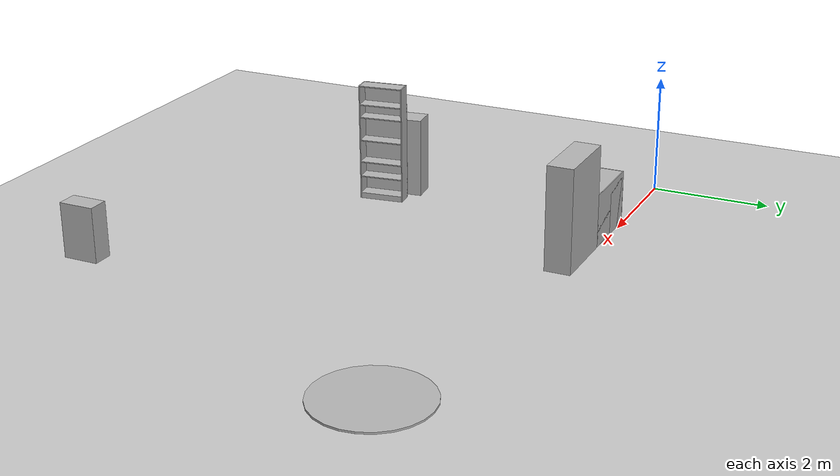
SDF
<sdf version="1.6">
 <world name="rwc2017">
  <light name="sun" type="directional">
   <direction>0.5 0.1 -0.9</direction>
   <pose>0 0 10 0 0 0</pose>
   <specular>0.2 0.2 0.2 1</specular>
   <diffuse>0.8 0.8 0.8 1</diffuse>
   <attenuation>
    <range>1000</range>
    <quadratic>0.001</quadratic>
    <constant>0.9</constant>
    <linear>0.01</linear>
   </attenuation>
  </light>
  <model name="initial_pose" type="waypoint">
   <pose>9.3 -7.3 0 0 0 2.35619449019</pose>
   <static>true</static>
  </model>
  <model name="exit" type="waypoint"><pose>0.0 1.0 0 0 0 1.57079632679</pose><static>true</static></model>
  <model name="initial_pose_exit" type="waypoint">
   <pose>0.0 1.0 0.0 0 0 -1.570796</pose>
   <static>true</static>
  </model>
  <model name="registration_table1" type="waypoint">
   <pose>4.16 -5.61 0 0 0 3.1415</pose>
   <static>true</static>
  </model>
  <model name="registration_table2" type="waypoint">
   <pose>6.12 -5.79 0 0 0 3.1415</pose>
   <static>true</static>
  </model>
  <model name="registration_table3" type="waypoint">
   <pose>2.55 -5.65 0 0 0 3.1415</pose>
   <static>true</static>
  </model>
  <model name="exit_1_rips" type="waypoint"><pose>0.0 1.0 0 0 0 1.5708</pose><static>true</static></model>
  <model name="exit_2_rips" type="waypoint"><pose>0.0 2.0 0 0 0 1.5708</pose><static>true</static></model>
  <model name="exit_3_rips" type="waypoint"><pose>0.0 -1.0 0 0 0 1.5708</pose><static>true</static></model>
  <model name="exit_4_rips" type="waypoint"><pose>0.0 -2.0 0 0 0 1.5708</pose><static>true</static></model>
  <model name="help_me_carry_start" type="waypoint"><pose>3.5 -5.6 0 0 0 0</pose><static>true</static></model>
  <model name="gpsr_meeting_point" type="waypoint"><pose>-2.0 -1.4 0 0 0 0.0</pose><static>true</static></model>
  <model name="gpsr_exit_door" type="waypoint">
   <pose>0.0 1.0 0 0 0 1.57079632679</pose>
   <static>true</static>
  </model>
  <model name="ssl_demo_waypoint" type="waypoint">
   <pose>0.0 -3.0 0 0 0 -1.5708</pose>
   <static>true</static>
  </model>
  <model name="laser_demo_waypoint" type="waypoint">
   <pose>2.0 -5.6 0 0 0 3.1415</pose>
   <static>true</static>
  </model>
  <model name="order_counter_waypoint" type="waypoint">
   <pose>0.0 -6.0 0 0 0 -1.5708</pose>
   <static>true</static>
  </model>
  <model name="hsr_demo_waypoint" type="waypoint">
   <pose>4.278 -4.2286 0 0 0 -0.6158</pose>
   <static>true</static>
  </model>
  <model name="entrance" type="room">
   <link name="in">
    <virtual_volume name="in_vv">
     <geometry><box><size>2.8 1.5 0.01</size></box></geometry>
     <pose>0.15 -0.15 0.005 0 0 0</pose>
    </virtual_volume>
   </link>
   <pose>7.8 -7.1 0 0 0 0</pose>
   <static>true</static>
  </model>
  <model name="living_room" type="room">
   <link name="in">
    <virtual_volume name="in_vv">
     <geometry><box><size>4.0 4.65 0.01</size></box></geometry>
     <pose>-0.2 0.225 0.005 0 0 0</pose>
    </virtual_volume>
   </link>
   <pose>0.0 -2.8 0 0 0 0</pose>
   <static>true</static>
  </model>
  <model name="exit_area" type="room">
   <link name="in">
    <virtual_volume name="in_vv">
     <geometry><box><size>1.4 0.8 0.01</size></box></geometry>
     <pose>0.0 0.0 0.005 0 0 0</pose>
    </virtual_volume>
   </link>
   <pose>0.0 -0.4 0 0 0 0</pose>
   <static>true</static>
  </model>
  <model name="corridor" type="room">
   <link name="in">
    <virtual_volume name="in_vv">
     <geometry><box><size>7.3 0.85 0.01</size></box></geometry>
     <pose>-0.45 0.025 0.005 0 0 0</pose>
    </virtual_volume>
   </link>
   <pose>6.5 -5.7 0 0 0 0</pose>
   <static>true</static>
  </model>
  <model name="bedroom" type="room">
   <link name="in">
    <virtual_volume name="in_vv">
     <geometry><box><size>3.05 4.8 0.01</size></box></geometry>
     <pose>0.725 0.05 0.005 0 0 0</pose>
    </virtual_volume>
   </link>
   <pose>7.5 -2.5 0 0 0 0</pose>
   <static>true</static>
  </model>
  <model name="kitchen" type="room">
   <link name="in">
    <virtual_volume name="in_vv">
     <geometry><box><size>3.7 4.55 0.01</size></box></geometry>
     <pose>0.25 -0.825 0.005 0 0 0</pose>
    </virtual_volume>
   </link>
   <pose>4.0 -1.5 0 0 0 0</pose>
   <static>true</static>
  </model>
  <model name="balcony" type="room">
   <link name="in">
    <virtual_volume name="in_vv">
     <geometry><box><size>3.45 3.5 0.01</size></box></geometry>
     <pose>0.275 -0.85 0.005 0 0 0</pose>
    </virtual_volume>
   </link>
   <pose>-1.0 -7.2 0 0 0 0</pose>
   <static>true</static>
  </model>
  <include><name>floor</name><uri>model://ground_plane</uri></include>
  <include>
   <pose>6.655 -7.21 0.0 0 0 0.0</pose>
   <name>entrance_shelf</name>
   <uri>model://rwc2017/cabinet_black</uri>
  </include>
  <include>
   <pose>1.92 -4.1 0.0 0 0 3.27079632679</pose>
   <name>bookcase</name>
   <uri>model://rwc2017/cabinet_showcase</uri>
  </include>
  <include>
   <pose>2.31 -0.255 0.0 0 0 -1.57079632679</pose>
   <name>sideboard</name>
   <uri>model://rwc2017/cabinet_brown_low</uri>
  </include>
  <include>
   <pose>3.51 -0.255 0.0 0 0 -1.57079632679</pose>
   <name>sideboard_high</name>
   <uri>model://rwc2017/cabinet_brown_high</uri>
  </include>
  <include>
   <pose>2.39 -4.125 0.0 0 0 0.1292036732</pose>
   <name>kitchen_shelf</name>
   <uri>model://rwc2017/cabinet_kitchen</uri>
  </include>
  <include><pose>8.85 -1.0 0.0 0 0 0.0</pose><name>carpet</name><uri>model://rwc2017/carpet</uri></include>
  <physics type="ode">
   <real_time_update_rate>333.0</real_time_update_rate>
   <max_step_size>0.003</max_step_size>
   <ode><constraints><cfm>0.0001</cfm></constraints><solver><type>quick</type><iters>100</iters></solver></ode>
  </physics>
 </world>
</sdf>

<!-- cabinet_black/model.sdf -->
<sdf version="1.6">
  <model name="rwc2017/cabinet_black">
    <link name="1_link">
      <collision name="1_col">
        <geometry>
          <box>
            <size>0.35 0.6 0.93</size>
          </box>
        </geometry>
      </collision>
      <visual name="1_vis">
        <geometry>
          <box>
            <size>0.35 0.6 0.93</size>
          </box>
        </geometry>
      </visual>
      <pose>0 0 0.465 0 0 0</pose>
    </link>
    <link name="on_top_of">
      <virtual_volume name="on_top_of_vv">
        <geometry>
          <box>
            <size>0.29 0.54 0.25</size>
          </box>
        </geometry>
        <pose>0.0 0.0 1.075 0 0 0</pose>
      </virtual_volume>
    </link>
    <link name="in_front_of">
      <virtual_volume name="in_front_of_vv">
        <geometry>
          <box>
            <size>0.2 0.4 0.01</size>
          </box>
        </geometry>
        <pose>0.6 0.0 0.005 0 0 0</pose>
      </virtual_volume>
    </link>
    <static>true</static>
  </model>
</sdf>

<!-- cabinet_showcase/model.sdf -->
<sdf version="1.6">
  <model name="rwc2017/cabinet_showcase">
    <link name="1_link">
      <collision name="1_col">
        <geometry>
          <box>
            <size>0.41 1.0 1.36</size>
          </box>
        </geometry>
      </collision>
      <visual name="1_vis">
        <geometry>
          <box>
            <size>0.41 1.0 1.36</size>
          </box>
        </geometry>
      </visual>
      <pose>0 0 0.68 0 0 0</pose>
    </link>
    <link name="on_top_of">
      <virtual_volume name="on_top_of_vv">
        <geometry>
          <box>
            <size>0.35 0.94 0.25</size>
          </box>
        </geometry>
        <pose>0.0 0.0 1.505 0 0 0</pose>
      </virtual_volume>
    </link>
    <link name="in_front_of">
      <virtual_volume name="in_front_of_vv">
        <geometry>
          <box>
            <size>0.2 0.8 0.01</size>
          </box>
        </geometry>
        <pose>0.705 0.0 0.005 0 0 0</pose>
      </virtual_volume>
    </link>
    <static>true</static>
  </model>
</sdf>

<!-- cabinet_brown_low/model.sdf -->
<sdf version="1.6">
  <model name="rwc2017/cabinet_brown_low">
    <link name="1_link">
      <collision name="1_col">
        <geometry>
          <box>
            <size>0.44 0.015 0.9</size>
          </box>
        </geometry>
      </collision>
      <visual name="1_vis">
        <geometry>
          <box>
            <size>0.44 0.015 0.9</size>
          </box>
        </geometry>
      </visual>
      <pose>0 -0.5925 0.45 0 0 0</pose>
    </link>
    <link name="2_link">
      <collision name="2_col">
        <geometry>
          <box>
            <size>0.44 0.015 0.9</size>
          </box>
        </geometry>
      </collision>
      <visual name="2_vis">
        <geometry>
          <box>
            <size>0.44 0.015 0.9</size>
          </box>
        </geometry>
      </visual>
      <pose>0 0.5925 0.45 0 0 0</pose>
    </link>
    <link name="3_link">
      <collision name="3_col">
        <geometry>
          <box>
            <size>0.015 1.2 0.9</size>
          </box>
        </geometry>
      </collision>
      <visual name="3_vis">
        <geometry>
          <box>
            <size>0.015 1.2 0.9</size>
          </box>
        </geometry>
      </visual>
      <pose>-0.2125 0 0.45 0 0 0</pose>
    </link>
    <link name="4_link">
      <collision name="4_col">
        <geometry>
          <box>
            <size>0.425 1.17 0.03</size>
          </box>
        </geometry>
      </collision>
      <visual name="4_vis">
        <geometry>
          <box>
            <size>0.425 1.17 0.03</size>
          </box>
        </geometry>
      </visual>
      <pose>0.0075 0 0.885 0 0 0</pose>
    </link>
    <link name="5_link">
      <collision name="5_col">
        <geometry>
          <box>
            <size>0.425 1.17 0.03</size>
          </box>
        </geometry>
      </collision>
      <visual name="5_vis">
        <geometry>
          <box>
            <size>0.425 1.17 0.03</size>
          </box>
        </geometry>
      </visual>
      <pose>0.0075 0 0.015 0 0 0</pose>
    </link>
    <link name="6_link">
      <collision name="6_col">
        <geometry>
          <box>
            <size>0.425 1.17 0.045</size>
          </box>
        </geometry>
      </collision>
      <visual name="6_vis">
        <geometry>
          <box>
            <size>0.425 1.17 0.045</size>
          </box>
        </geometry>
      </visual>
      <pose>0.0075 0 0.4625 0 0 0</pose>
    </link>
    <link name="7_link">
      <collision name="7_col">
        <geometry>
          <box>
            <size>0.425 0.045 0.855</size>
          </box>
        </geometry>
      </collision>
      <visual name="7_vis">
        <geometry>
          <box>
            <size>0.425 0.045 0.855</size>
          </box>
        </geometry>
      </visual>
      <pose>0.0075 0.0 0.4575 0 0 0</pose>
    </link>
    <link name="8_link">
      <collision name="8_col">
        <geometry>
          <box>
            <size>0.44 0.6 0.89</size>
          </box>
        </geometry>
      </collision>
      <visual name="8_vis">
        <geometry>
          <box>
            <size>0.44 0.6 0.89</size>
          </box>
        </geometry>
      </visual>
      <pose>0.0 -0.3 0.44 0 0 0</pose>
    </link>
    <link name="9_link">
      <collision name="9_col">
        <geometry>
          <box>
            <size>0.44 0.6 0.43</size>
          </box>
        </geometry>
      </collision>
      <visual name="9_vis">
        <geometry>
          <box>
            <size>0.44 0.6 0.43</size>
          </box>
        </geometry>
      </visual>
      <pose>0.0 0.3 0.22 0 0 0</pose>
    </link>
    <link name="in_front_of">
      <virtual_volume name="in_front_of_vv">
        <geometry>
          <box>
            <size>0.2 0.7 0.01</size>
          </box>
        </geometry>
        <pose>0.72 0.15 0.005 0 0 0</pose>
      </virtual_volume>
    </link>
    <link name="on_top_of">
      <virtual_volume name="on_top_of_vv">
        <geometry>
          <box>
            <size>0.415 1.14 0.325</size>
          </box>
        </geometry>
        <pose>0.0075 0.0 1.0875 0 0 0</pose>
      </virtual_volume>
    </link>
    <link name="shelf1">
      <virtual_volume name="shelf1_vv">
        <geometry>
          <box>
            <size>0.395 0.51 0.29</size>
          </box>
        </geometry>
        <pose>0.0175 0.305 0.655 0 0 0</pose>
      </virtual_volume>
    </link>
    <static>true</static>
  </model>
</sdf>

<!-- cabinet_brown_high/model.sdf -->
<sdf version="1.6">
  <model name="rwc2017/cabinet_brown_high">
    <link name="1_link">
      <collision name="1_col">
        <geometry>
          <box>
            <size>0.44 1.2 1.74</size>
          </box>
        </geometry>
      </collision>
      <visual name="1_vis">
        <geometry>
          <box>
            <size>0.44 1.2 1.74</size>
          </box>
        </geometry>
      </visual>
      <pose>0 0 0.87 0 0 0</pose>
    </link>
    <link name="in_front_of">
      <virtual_volume name="in_front_of_vv">
        <geometry>
          <box>
            <size>0.2 1.0 0.01</size>
          </box>
        </geometry>
        <pose>0.72 0.0 0.005 0 0 0</pose>
      </virtual_volume>
    </link>
    <static>true</static>
  </model>
</sdf>

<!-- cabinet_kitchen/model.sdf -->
<sdf version="1.6">
  <model name="rwc2017/cabinet_kitchen">
    <link name="1_link">
      <collision name="1_col">
        <geometry>
          <box>
            <size>0.28 0.018 2.02</size>
          </box>
        </geometry>
      </collision>
      <visual name="1_vis">
        <geometry>
          <box>
            <size>0.28 0.018 2.02</size>
          </box>
        </geometry>
      </visual>
      <pose>0 -0.371 1.01 0 0 0</pose>
    </link>
    <link name="2_link">
      <collision name="2_col">
        <geometry>
          <box>
            <size>0.28 0.018 2.02</size>
          </box>
        </geometry>
      </collision>
      <visual name="2_vis">
        <geometry>
          <box>
            <size>0.28 0.018 2.02</size>
          </box>
        </geometry>
      </visual>
      <pose>0 0.371 1.01 0 0 0</pose>
    </link>
    <link name="3_link">
      <collision name="3_col">
        <geometry>
          <box>
            <size>0.018 0.76 2.02</size>
          </box>
        </geometry>
      </collision>
      <visual name="3_vis">
        <geometry>
          <box>
            <size>0.018 0.76 2.02</size>
          </box>
        </geometry>
      </visual>
      <pose>-0.131 0 1.01 0 0 0</pose>
    </link>
    <link name="4_link">
      <collision name="4_col">
        <geometry>
          <box>
            <size>0.262 0.724 0.018</size>
          </box>
        </geometry>
      </collision>
      <visual name="4_vis">
        <geometry>
          <box>
            <size>0.262 0.724 0.018</size>
          </box>
        </geometry>
      </visual>
      <pose>0.009 0 2.011 0 0 0</pose>
    </link>
    <link name="5_link">
      <collision name="5_col">
        <geometry>
          <box>
            <size>0.262 0.724 0.098</size>
          </box>
        </geometry>
      </collision>
      <visual name="5_vis">
        <geometry>
          <box>
            <size>0.262 0.724 0.098</size>
          </box>
        </geometry>
      </visual>
      <pose>0.009 0 0.049 0 0 0</pose>
    </link>
    <link name="6_link">
      <collision name="6_col">
        <geometry>
          <box>
            <size>0.262 0.724 0.018</size>
          </box>
        </geometry>
      </collision>
      <visual name="6_vis">
        <geometry>
          <box>
            <size>0.262 0.724 0.018</size>
          </box>
        </geometry>
      </visual>
      <pose>0.009 0 0.399 0 0 0</pose>
    </link>
    <link name="7_link">
      <collision name="7_col">
        <geometry>
          <box>
            <size>0.262 0.724 0.018</size>
          </box>
        </geometry>
      </collision>
      <visual name="7_vis">
        <geometry>
          <box>
            <size>0.262 0.724 0.018</size>
          </box>
        </geometry>
      </visual>
      <pose>0.009 0 0.659 0 0 0</pose>
    </link>
    <link name="8_link">
      <collision name="8_col">
        <geometry>
          <box>
            <size>0.262 0.724 0.018</size>
          </box>
        </geometry>
      </collision>
      <visual name="8_vis">
        <geometry>
          <box>
            <size>0.262 0.724 0.018</size>
          </box>
        </geometry>
      </visual>
      <pose>0.009 0 1.049 0 0 0</pose>
    </link>
    <link name="9_link">
      <collision name="9_col">
        <geometry>
          <box>
            <size>0.262 0.724 0.018</size>
          </box>
        </geometry>
      </collision>
      <visual name="9_vis">
        <geometry>
          <box>
            <size>0.262 0.724 0.018</size>
          </box>
        </geometry>
      </visual>
      <pose>0.009 0 1.459 0 0 0</pose>
    </link>
    <link name="10_link">
      <collision name="10_col">
        <geometry>
          <box>
            <size>0.262 0.724 0.018</size>
          </box>
        </geometry>
      </collision>
      <visual name="10_vis">
        <geometry>
          <box>
            <size>0.262 0.724 0.018</size>
          </box>
        </geometry>
      </visual>
      <pose>0.009 0 1.684 0 0 0</pose>
    </link>
    <link name="in_front_of">
      <virtual_volume name="in_front_of_vv">
        <geometry>
          <box>
            <size>0.2 0.56 0.01</size>
          </box>
        </geometry>
        <pose>0.64 0.0 0.005 0 0 0</pose>
      </virtual_volume>
    </link>
    <link name="shelf1">
      <virtual_volume name="shelf1_vv">
        <geometry>
          <box>
            <size>0.222 0.664 0.242</size>
          </box>
        </geometry>
        <pose>0.019 0.0 0.239 0 0 0</pose>
      </virtual_volume>
    </link>
    <link name="shelf2">
      <virtual_volume name="shelf2_vv">
        <geometry>
          <box>
            <size>0.222 0.664 0.202</size>
          </box>
        </geometry>
        <pose>0.019 0.0 0.529 0 0 0</pose>
      </virtual_volume>
    </link>
    <link name="shelf3">
      <virtual_volume name="shelf3_vv">
        <geometry>
          <box>
            <size>0.222 0.664 0.25</size>
          </box>
        </geometry>
        <pose>0.019 0.0 0.813 0 0 0</pose>
      </virtual_volume>
    </link>
    <link name="shelf4">
      <virtual_volume name="shelf4_vv">
        <geometry>
          <box>
            <size>0.222 0.664 0.25</size>
          </box>
        </geometry>
        <pose>0.019 0.0 1.203 0 0 0</pose>
      </virtual_volume>
    </link>
    <link name="shelf5">
      <virtual_volume name="shelf5_vv">
        <geometry>
          <box>
            <size>0.222 0.664 0.162</size>
          </box>
        </geometry>
        <pose>0.019 0.0 1.569 0 0 0</pose>
      </virtual_volume>
    </link>
    <link name="shelf6">
      <virtual_volume name="shelf6_vv">
        <geometry>
          <box>
            <size>0.222 0.664 0.25</size>
          </box>
        </geometry>
        <pose>0.019 0.0 1.838 0 0 0</pose>
      </virtual_volume>
    </link>
    <static>true</static>
  </model>
</sdf>

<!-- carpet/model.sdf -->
<sdf version="1.6">
  <model name="rwc2017/carpet">
    <link name="1_link">
      <collision name="1_col">
        <geometry>
          <cylinder>
            <length>0.03</length>
            <radius>0.9</radius>
          </cylinder>
        </geometry>
      </collision>
      <visual name="1_vis">
        <geometry>
          <cylinder>
            <length>0.03</length>
            <radius>0.9</radius>
          </cylinder>
        </geometry>
      </visual>
      <pose>0 0 0.015 0 0 0</pose>
    </link>
    <static>true</static>
  </model>
</sdf>
